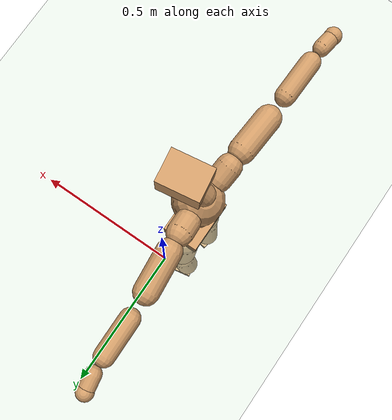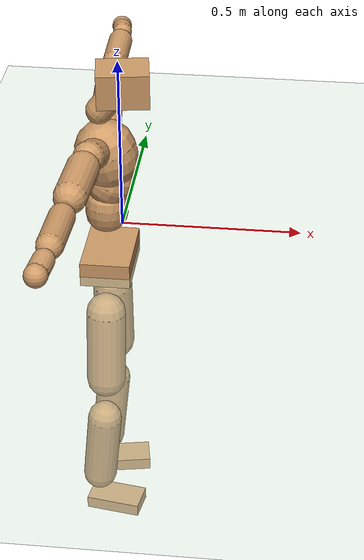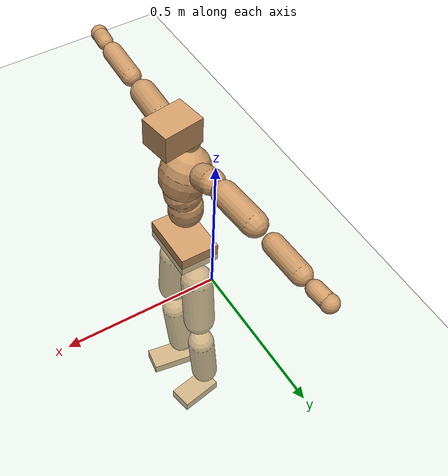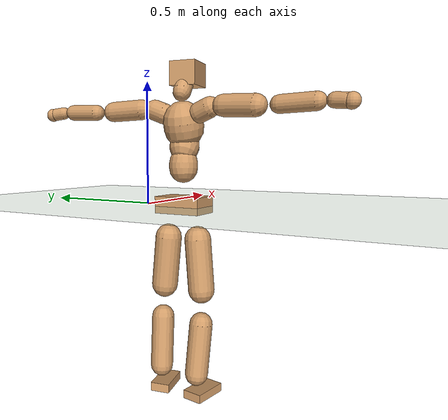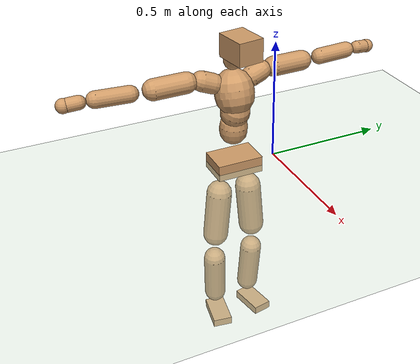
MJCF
<mujoco model="humanoid">
  <compiler coordinate="local" angle="radian"/>
  <default>
    <joint damping="0.0" armature="0.01" stiffness="0.0" limited="true"/>
    <geom conaffinity="1" condim="3" contype="7" margin="0.001" rgba="0.8 0.6 .4 1"/>
  </default>
  <asset>
    <texture type="skybox" builtin="gradient" rgb1=".4 .5 .6" rgb2="0 0 0" width="100" height="100"/>
    <texture builtin="flat" height="1278" mark="cross" markrgb="1 1 1" name="texgeom" random="0.01" rgb1="0.8 0.6 0.4" rgb2="0.8 0.6 0.4" type="cube" width="127"/>
    <texture builtin="checker" height="100" name="texplane" rgb1="0 0 0" rgb2="0.8 0.8 0.8" type="2d" width="100"/>
    <material name="MatPlane" reflectance="0.5" shininess="1" specular="1" texrepeat="60 60" texture="texplane"/>
    <material name="geom" texture="texgeom" texuniform="true"/>
  </asset>
  <worldbody>
    <light cutoff="100" diffuse="1 1 1" dir="-0 0 -1.3" directional="true" exponent="1" pos="0 0 1.3" specular=".1 .1 .1"/>
    <geom conaffinity="1" condim="3" name="floor" pos="0 0 0" rgba="0.8 0.9 0.8 1" size="100 100 .2" type="plane" material="MatPlane"/>
    <body name="Pelvis" pos="-0.0008 -0.1784 0.0155">
      <freejoint name="Pelvis"/>
      <geom type="box" contype="1" conaffinity="1" density="500" pos="-0.0056 -0.0000 -0.0116" size="0.0667 0.0973 0.034" quat="1.0000 0.0000 0.0000 0.0001" name="Pelvis"/>
      <body name="L_Hip" pos="-0.0127 0.062 -0.0805">
        <joint name="L_Hip_x" type="hinge" pos="0 0 0" axis="1 0 0" stiffness="800" damping="80" armature="0.02" range="-180.0000 180.0000"/>
        <joint name="L_Hip_y" type="hinge" pos="0 0 0" axis="0 1 0" stiffness="800" damping="80" armature="0.02" range="-180.0000 180.0000"/>
        <joint name="L_Hip_z" type="hinge" pos="0 0 0" axis="0 0 1" stiffness="800" damping="80" armature="0.02" range="-180.0000 180.0000"/>
        <geom type="capsule" contype="1" conaffinity="1" density="500" fromto="-0.0004 0.0060 -0.0681 -0.0017 0.0239 -0.2723" size="0.0541" name="L_Hip"/>
        <body name="L_Knee" pos="-0.0021 0.0299 -0.3404">
          <joint name="L_Knee_x" type="hinge" pos="0 0 0" axis="1 0 0" stiffness="800" damping="80" armature="0.02" range="-180.0000 180.0000"/>
          <joint name="L_Knee_y" type="hinge" pos="0 0 0" axis="0 1 0" stiffness="800" damping="80" armature="0.02" range="-180.0000 180.0000"/>
          <joint name="L_Knee_z" type="hinge" pos="0 0 0" axis="0 0 1" stiffness="800" damping="80" armature="0.02" range="-180.0000 180.0000"/>
          <geom type="capsule" contype="1" conaffinity="1" density="500" fromto="-0.0074 -0.0021 -0.0700 -0.0296 -0.0084 -0.2798" size="0.0467" name="L_Knee"/>
          <body name="L_Ankle" pos="-0.037 -0.0105 -0.3498">
            <joint name="L_Ankle_x" type="hinge" pos="0 0 0" axis="1 0 0" stiffness="800" damping="80" armature="0.02" range="-180.0000 180.0000"/>
            <joint name="L_Ankle_y" type="hinge" pos="0 0 0" axis="0 1 0" stiffness="800" damping="80" armature="0.02" range="-180.0000 180.0000"/>
            <joint name="L_Ankle_z" type="hinge" pos="0 0 0" axis="0 0 1" stiffness="800" damping="80" armature="0.02" range="-180.0000 180.0000"/>
            <geom type="box" contype="1" conaffinity="1" density="500" pos="0.0522 0.0099 -0.0243" size="0.075 0.0402 0.018" quat="0.9956 0.0000 0.0000 0.0934" name="L_Ankle"/>
            <body name="L_Toe" pos="0.1043 0.0197 -0.0487">
              <joint name="L_Toe_x" type="hinge" pos="0 0 0" axis="1 0 0" stiffness="500" damping="50" armature="0.02" range="-180.0000 180.0000"/>
              <joint name="L_Toe_y" type="hinge" pos="0 0 0" axis="0 1 0" stiffness="500" damping="50" armature="0.02" range="-180.0000 180.0000"/>
              <joint name="L_Toe_z" type="hinge" pos="0 0 0" axis="0 0 1" stiffness="500" damping="50" armature="0.02" range="-180.0000 180.0000"/>
              <geom type="box" contype="1" conaffinity="1" density="500" pos="0.0000 0.0000 0.0241" size="0.0008 0.002 0.0009" quat="0.9949 0.0000 0.0000 0.1007" name="L_Toe"/>
            </body>
          </body>
        </body>
      </body>
      <body name="R_Hip" pos="-0.0095 -0.0609 -0.0795">
        <joint name="R_Hip_x" type="hinge" pos="0 0 0" axis="1 0 0" stiffness="800" damping="80" armature="0.02" range="-180.0000 180.0000"/>
        <joint name="R_Hip_y" type="hinge" pos="0 0 0" axis="0 1 0" stiffness="800" damping="80" armature="0.02" range="-180.0000 180.0000"/>
        <joint name="R_Hip_z" type="hinge" pos="0 0 0" axis="0 0 1" stiffness="800" damping="80" armature="0.02" range="-180.0000 180.0000"/>
        <geom type="capsule" contype="1" conaffinity="1" density="500" fromto="-0.0009 -0.0066 -0.0693 -0.0036 -0.0265 -0.2774" size="0.0535" name="R_Hip"/>
        <body name="R_Knee" pos="-0.0045 -0.0332 -0.3467">
          <joint name="R_Knee_x" type="hinge" pos="0 0 0" axis="1 0 0" stiffness="800" damping="80" armature="0.02" range="-180.0000 180.0000"/>
          <joint name="R_Knee_y" type="hinge" pos="0 0 0" axis="0 1 0" stiffness="800" damping="80" armature="0.02" range="-180.0000 180.0000"/>
          <joint name="R_Knee_z" type="hinge" pos="0 0 0" axis="0 0 1" stiffness="800" damping="80" armature="0.02" range="-180.0000 180.0000"/>
          <geom type="capsule" contype="1" conaffinity="1" density="500" fromto="-0.0070 0.0027 -0.0701 -0.0282 0.0109 -0.2804" size="0.0471" name="R_Knee"/>
          <body name="R_Ankle" pos="-0.0352 0.0136 -0.3504">
            <joint name="R_Ankle_x" type="hinge" pos="0 0 0" axis="1 0 0" stiffness="800" damping="80" armature="0.02" range="-180.0000 180.0000"/>
            <joint name="R_Ankle_y" type="hinge" pos="0 0 0" axis="0 1 0" stiffness="800" damping="80" armature="0.02" range="-180.0000 180.0000"/>
            <joint name="R_Ankle_z" type="hinge" pos="0 0 0" axis="0 0 1" stiffness="800" damping="80" armature="0.02" range="-180.0000 180.0000"/>
            <geom type="box" contype="1" conaffinity="1" density="500" pos="0.0534 -0.0085 -0.0208" size="0.0759 0.0414 0.0177" quat="0.9969 0.0000 0.0000 -0.0787" name="R_Ankle"/>
            <body name="R_Toe" pos="0.1069 -0.017 -0.0415">
              <joint name="R_Toe_x" type="hinge" pos="0 0 0" axis="1 0 0" stiffness="500" damping="50" armature="0.02" range="-180.0000 180.0000"/>
              <joint name="R_Toe_y" type="hinge" pos="0 0 0" axis="0 1 0" stiffness="500" damping="50" armature="0.02" range="-180.0000 180.0000"/>
              <joint name="R_Toe_z" type="hinge" pos="0 0 0" axis="0 0 1" stiffness="500" damping="50" armature="0.02" range="-180.0000 180.0000"/>
              <geom type="box" contype="1" conaffinity="1" density="500" pos="0.0000 0.0000 0.0216" size="0.0008 0.0021 0.0009" quat="0.9977 0.0000 0.0000 -0.0683" name="R_Toe"/>
            </body>
          </body>
        </body>
      </body>
      <body name="Torso" pos="-0.0112 -0.0012 0.0903">
        <joint name="Torso_x" type="hinge" pos="0 0 0" axis="1 0 0" stiffness="1000" damping="100" armature="0.02" range="-180.0000 180.0000"/>
        <joint name="Torso_y" type="hinge" pos="0 0 0" axis="0 1 0" stiffness="1000" damping="100" armature="0.02" range="-180.0000 180.0000"/>
        <joint name="Torso_z" type="hinge" pos="0 0 0" axis="0 0 1" stiffness="1000" damping="100" armature="0.02" range="-180.0000 180.0000"/>
        <geom type="capsule" contype="1" conaffinity="1" density="500" fromto="0.0021 0.0013 0.0667 0.0014 0.0008 0.0444" size="0.0573" name="Torso"/>
        <body name="Spine" pos="0.0034 0.0021 0.1111">
          <joint name="Spine_x" type="hinge" pos="0 0 0" axis="1 0 0" stiffness="1000" damping="100" armature="0.02" range="-180.0000 180.0000"/>
          <joint name="Spine_y" type="hinge" pos="0 0 0" axis="0 1 0" stiffness="1000" damping="100" armature="0.02" range="-180.0000 180.0000"/>
          <joint name="Spine_z" type="hinge" pos="0 0 0" axis="0 0 1" stiffness="1000" damping="100" armature="0.02" range="-180.0000 180.0000"/>
          <geom type="capsule" contype="1" conaffinity="1" density="500" fromto="0.0125 0.0014 0.0255 0.0083 0.0010 0.0170" size="0.0599" name="Spine"/>
          <body name="Chest" pos="0.0208 0.0024 0.0425">
            <joint name="Chest_x" type="hinge" pos="0 0 0" axis="1 0 0" stiffness="1000" damping="100" armature="0.02" range="-180.0000 180.0000"/>
            <joint name="Chest_y" type="hinge" pos="0 0 0" axis="0 1 0" stiffness="1000" damping="100" armature="0.02" range="-180.0000 180.0000"/>
            <joint name="Chest_z" type="hinge" pos="0 0 0" axis="0 0 1" stiffness="1000" damping="100" armature="0.02" range="-180.0000 180.0000"/>
            <geom type="capsule" contype="1" conaffinity="1" density="500" fromto="-0.0221 -0.0010 0.0761 -0.0147 -0.0007 0.0507" size="0.0805" name="Chest"/>
            <body name="Neck" pos="-0.0427 -0.0021 0.1778">
              <joint name="Neck_x" type="hinge" pos="0 0 0" axis="1 0 0" stiffness="500" damping="50" armature="0.02" range="-180.0000 180.0000"/>
              <joint name="Neck_y" type="hinge" pos="0 0 0" axis="0 1 0" stiffness="500" damping="50" armature="0.02" range="-180.0000 180.0000"/>
              <joint name="Neck_z" type="hinge" pos="0 0 0" axis="0 0 1" stiffness="500" damping="50" armature="0.02" range="-180.0000 180.0000"/>
              <geom type="capsule" contype="1" conaffinity="1" density="500" fromto="0.0092 0.0011 0.0111 0.0366 0.0043 0.0446" size="0.0359" name="Neck"/>
              <body name="Head" pos="0.0458 0.0053 0.0557">
                <joint name="Head_x" type="hinge" pos="0 0 0" axis="1 0 0" stiffness="500" damping="50" armature="0.02" range="-180.0000 180.0000"/>
                <joint name="Head_y" type="hinge" pos="0 0 0" axis="0 1 0" stiffness="500" damping="50" armature="0.02" range="-180.0000 180.0000"/>
                <joint name="Head_z" type="hinge" pos="0 0 0" axis="0 0 1" stiffness="500" damping="50" armature="0.02" range="-180.0000 180.0000"/>
                <geom type="box" contype="1" conaffinity="1" density="500" pos="0.0239 0.0037 0.0289" size="0.0679 0.0531 0.0466" quat="0.9971 0.0000 0.0000 0.0759" name="Head"/>
              </body>
            </body>
            <body name="L_Thorax" pos="-0.0318 0.064 0.102">
              <joint name="L_Thorax_x" type="hinge" pos="0 0 0" axis="1 0 0" stiffness="500" damping="50" armature="0.02" range="-180.0000 180.0000"/>
              <joint name="L_Thorax_y" type="hinge" pos="0 0 0" axis="0 1 0" stiffness="500" damping="50" armature="0.02" range="-180.0000 180.0000"/>
              <joint name="L_Thorax_z" type="hinge" pos="0 0 0" axis="0 0 1" stiffness="500" damping="50" armature="0.02" range="-180.0000 180.0000"/>
              <geom type="capsule" contype="1" conaffinity="1" density="500" fromto="-0.0009 0.0146 0.0054 -0.0036 0.0586 0.0218" size="0.0414" name="L_Thorax"/>
              <body name="L_Shoulder" pos="-0.0045 0.0732 0.0272">
                <joint name="L_Shoulder_x" type="hinge" pos="0 0 0" axis="1 0 0" stiffness="500" damping="50" armature="0.02" range="-720.0000 720.0000"/>
                <joint name="L_Shoulder_y" type="hinge" pos="0 0 0" axis="0 1 0" stiffness="500" damping="50" armature="0.02" range="-720.0000 720.0000"/>
                <joint name="L_Shoulder_z" type="hinge" pos="0 0 0" axis="0 0 1" stiffness="500" damping="50" armature="0.02" range="-720.0000 720.0000"/>
                <geom type="capsule" contype="1" conaffinity="1" density="500" fromto="-0.0042 0.0452 -0.0016 -0.0170 0.1806 -0.0063" size="0.0408" name="L_Shoulder"/>
                <body name="L_Elbow" pos="-0.0212 0.2258 -0.0079">
                  <joint name="L_Elbow_x" type="hinge" pos="0 0 0" axis="1 0 0" stiffness="500" damping="50" armature="0.02" range="-720.0000 720.0000"/>
                  <joint name="L_Elbow_y" type="hinge" pos="0 0 0" axis="0 1 0" stiffness="500" damping="50" armature="0.02" range="-720.0000 720.0000"/>
                  <joint name="L_Elbow_z" type="hinge" pos="0 0 0" axis="0 0 1" stiffness="500" damping="50" armature="0.02" range="-720.0000 720.0000"/>
                  <geom type="capsule" contype="1" conaffinity="1" density="500" fromto="-0.0006 0.0426 0.0015 -0.0023 0.1703 0.0061" size="0.0329" name="L_Elbow"/>
                  <body name="L_Wrist" pos="-0.0028 0.2129 0.0077">
                    <joint name="L_Wrist_x" type="hinge" pos="0 0 0" axis="1 0 0" stiffness="300" damping="30" armature="0.02" range="-180.0000 180.0000"/>
                    <joint name="L_Wrist_y" type="hinge" pos="0 0 0" axis="0 1 0" stiffness="300" damping="30" armature="0.02" range="-180.0000 180.0000"/>
                    <joint name="L_Wrist_z" type="hinge" pos="0 0 0" axis="0 0 1" stiffness="300" damping="30" armature="0.02" range="-180.0000 180.0000"/>
                    <geom type="capsule" contype="1" conaffinity="1" density="500" fromto="-0.0024 0.0139 -0.0017 -0.0094 0.0554 -0.0067" size="0.0261" name="L_Wrist"/>
                    <body name="L_Hand" pos="-0.0118 0.0693 -0.0084">
                      <joint name="L_Hand_x" type="hinge" pos="0 0 0" axis="1 0 0" stiffness="300" damping="30" armature="0.02" range="-180.0000 180.0000"/>
                      <joint name="L_Hand_y" type="hinge" pos="0 0 0" axis="0 1 0" stiffness="300" damping="30" armature="0.02" range="-180.0000 180.0000"/>
                      <joint name="L_Hand_z" type="hinge" pos="0 0 0" axis="0 0 1" stiffness="300" damping="30" armature="0.02" range="-180.0000 180.0000"/>
                      <geom type="sphere" contype="1" conaffinity="1" density="500" size="0.0280" pos="0.0000 0.0000 0.0000" name="L_Hand"/>
                    </body>
                  </body>
                </body>
              </body>
            </body>
            <body name="R_Thorax" pos="-0.0358 -0.0667 0.1006">
              <joint name="R_Thorax_x" type="hinge" pos="0 0 0" axis="1 0 0" stiffness="500" damping="50" armature="0.02" range="-180.0000 180.0000"/>
              <joint name="R_Thorax_y" type="hinge" pos="0 0 0" axis="0 1 0" stiffness="500" damping="50" armature="0.02" range="-180.0000 180.0000"/>
              <joint name="R_Thorax_z" type="hinge" pos="0 0 0" axis="0 0 1" stiffness="500" damping="50" armature="0.02" range="-180.0000 180.0000"/>
              <geom type="capsule" contype="1" conaffinity="1" density="500" fromto="-0.0016 -0.0155 0.0059 -0.0065 -0.0619 0.0234" size="0.0409" name="R_Thorax"/>
              <body name="R_Shoulder" pos="-0.0081 -0.0774 0.0293">
                <joint name="R_Shoulder_x" type="hinge" pos="0 0 0" axis="1 0 0" stiffness="500" damping="50" armature="0.02" range="-720.0000 720.0000"/>
                <joint name="R_Shoulder_y" type="hinge" pos="0 0 0" axis="0 1 0" stiffness="500" damping="50" armature="0.02" range="-720.0000 720.0000"/>
                <joint name="R_Shoulder_z" type="hinge" pos="0 0 0" axis="0 0 1" stiffness="500" damping="50" armature="0.02" range="-720.0000 720.0000"/>
                <geom type="capsule" contype="1" conaffinity="1" density="500" fromto="-0.0029 -0.0441 -0.0020 -0.0117 -0.1762 -0.0079" size="0.0424" name="R_Shoulder"/>
                <body name="R_Elbow" pos="-0.0146 -0.2203 -0.0098">
                  <joint name="R_Elbow_x" type="hinge" pos="0 0 0" axis="1 0 0" stiffness="500" damping="50" armature="0.02" range="-720.0000 720.0000"/>
                  <joint name="R_Elbow_y" type="hinge" pos="0 0 0" axis="0 1 0" stiffness="500" damping="50" armature="0.02" range="-720.0000 720.0000"/>
                  <joint name="R_Elbow_z" type="hinge" pos="0 0 0" axis="0 0 1" stiffness="500" damping="50" armature="0.02" range="-720.0000 720.0000"/>
                  <geom type="capsule" contype="1" conaffinity="1" density="500" fromto="-0.0014 -0.0445 0.0012 -0.0055 -0.1781 0.0047" size="0.0332" name="R_Elbow"/>
                  <body name="R_Wrist" pos="-0.0069 -0.2227 0.0059">
                    <joint name="R_Wrist_x" type="hinge" pos="0 0 0" axis="1 0 0" stiffness="300" damping="30" armature="0.02" range="-180.0000 180.0000"/>
                    <joint name="R_Wrist_y" type="hinge" pos="0 0 0" axis="0 1 0" stiffness="300" damping="30" armature="0.02" range="-180.0000 180.0000"/>
                    <joint name="R_Wrist_z" type="hinge" pos="0 0 0" axis="0 0 1" stiffness="300" damping="30" armature="0.02" range="-180.0000 180.0000"/>
                    <geom type="capsule" contype="1" conaffinity="1" density="500" fromto="-0.0018 -0.0142 -0.0013 -0.0074 -0.0568 -0.0052" size="0.0272" name="R_Wrist"/>
                    <body name="R_Hand" pos="-0.0092 -0.071 -0.0065">
                      <joint name="R_Hand_x" type="hinge" pos="0 0 0" axis="1 0 0" stiffness="300" damping="30" armature="0.02" range="-180.0000 180.0000"/>
                      <joint name="R_Hand_y" type="hinge" pos="0 0 0" axis="0 1 0" stiffness="300" damping="30" armature="0.02" range="-180.0000 180.0000"/>
                      <joint name="R_Hand_z" type="hinge" pos="0 0 0" axis="0 0 1" stiffness="300" damping="30" armature="0.02" range="-180.0000 180.0000"/>
                      <geom type="sphere" contype="1" conaffinity="1" density="500" size="0.0287" pos="0.0000 0.0000 0.0000" name="R_Hand"/>
                    </body>
                  </body>
                </body>
              </body>
            </body>
          </body>
        </body>
      </body>
    </body>
  </worldbody>
  <actuator>
    <motor name="L_Hip_x" joint="L_Hip_x" gear="500"/>
    <motor name="L_Hip_y" joint="L_Hip_y" gear="500"/>
    <motor name="L_Hip_z" joint="L_Hip_z" gear="500"/>
    <motor name="L_Knee_x" joint="L_Knee_x" gear="500"/>
    <motor name="L_Knee_y" joint="L_Knee_y" gear="500"/>
    <motor name="L_Knee_z" joint="L_Knee_z" gear="500"/>
    <motor name="L_Ankle_x" joint="L_Ankle_x" gear="500"/>
    <motor name="L_Ankle_y" joint="L_Ankle_y" gear="500"/>
    <motor name="L_Ankle_z" joint="L_Ankle_z" gear="500"/>
    <motor name="L_Toe_x" joint="L_Toe_x" gear="500"/>
    <motor name="L_Toe_y" joint="L_Toe_y" gear="500"/>
    <motor name="L_Toe_z" joint="L_Toe_z" gear="500"/>
    <motor name="R_Hip_x" joint="R_Hip_x" gear="500"/>
    <motor name="R_Hip_y" joint="R_Hip_y" gear="500"/>
    <motor name="R_Hip_z" joint="R_Hip_z" gear="500"/>
    <motor name="R_Knee_x" joint="R_Knee_x" gear="500"/>
    <motor name="R_Knee_y" joint="R_Knee_y" gear="500"/>
    <motor name="R_Knee_z" joint="R_Knee_z" gear="500"/>
    <motor name="R_Ankle_x" joint="R_Ankle_x" gear="500"/>
    <motor name="R_Ankle_y" joint="R_Ankle_y" gear="500"/>
    <motor name="R_Ankle_z" joint="R_Ankle_z" gear="500"/>
    <motor name="R_Toe_x" joint="R_Toe_x" gear="500"/>
    <motor name="R_Toe_y" joint="R_Toe_y" gear="500"/>
    <motor name="R_Toe_z" joint="R_Toe_z" gear="500"/>
    <motor name="Torso_x" joint="Torso_x" gear="500"/>
    <motor name="Torso_y" joint="Torso_y" gear="500"/>
    <motor name="Torso_z" joint="Torso_z" gear="500"/>
    <motor name="Spine_x" joint="Spine_x" gear="500"/>
    <motor name="Spine_y" joint="Spine_y" gear="500"/>
    <motor name="Spine_z" joint="Spine_z" gear="500"/>
    <motor name="Chest_x" joint="Chest_x" gear="500"/>
    <motor name="Chest_y" joint="Chest_y" gear="500"/>
    <motor name="Chest_z" joint="Chest_z" gear="500"/>
    <motor name="Neck_x" joint="Neck_x" gear="500"/>
    <motor name="Neck_y" joint="Neck_y" gear="500"/>
    <motor name="Neck_z" joint="Neck_z" gear="500"/>
    <motor name="Head_x" joint="Head_x" gear="500"/>
    <motor name="Head_y" joint="Head_y" gear="500"/>
    <motor name="Head_z" joint="Head_z" gear="500"/>
    <motor name="L_Thorax_x" joint="L_Thorax_x" gear="500"/>
    <motor name="L_Thorax_y" joint="L_Thorax_y" gear="500"/>
    <motor name="L_Thorax_z" joint="L_Thorax_z" gear="500"/>
    <motor name="L_Shoulder_x" joint="L_Shoulder_x" gear="500"/>
    <motor name="L_Shoulder_y" joint="L_Shoulder_y" gear="500"/>
    <motor name="L_Shoulder_z" joint="L_Shoulder_z" gear="500"/>
    <motor name="L_Elbow_x" joint="L_Elbow_x" gear="500"/>
    <motor name="L_Elbow_y" joint="L_Elbow_y" gear="500"/>
    <motor name="L_Elbow_z" joint="L_Elbow_z" gear="500"/>
    <motor name="L_Wrist_x" joint="L_Wrist_x" gear="500"/>
    <motor name="L_Wrist_y" joint="L_Wrist_y" gear="500"/>
    <motor name="L_Wrist_z" joint="L_Wrist_z" gear="500"/>
    <motor name="L_Hand_x" joint="L_Hand_x" gear="500"/>
    <motor name="L_Hand_y" joint="L_Hand_y" gear="500"/>
    <motor name="L_Hand_z" joint="L_Hand_z" gear="500"/>
    <motor name="R_Thorax_x" joint="R_Thorax_x" gear="500"/>
    <motor name="R_Thorax_y" joint="R_Thorax_y" gear="500"/>
    <motor name="R_Thorax_z" joint="R_Thorax_z" gear="500"/>
    <motor name="R_Shoulder_x" joint="R_Shoulder_x" gear="500"/>
    <motor name="R_Shoulder_y" joint="R_Shoulder_y" gear="500"/>
    <motor name="R_Shoulder_z" joint="R_Shoulder_z" gear="500"/>
    <motor name="R_Elbow_x" joint="R_Elbow_x" gear="500"/>
    <motor name="R_Elbow_y" joint="R_Elbow_y" gear="500"/>
    <motor name="R_Elbow_z" joint="R_Elbow_z" gear="500"/>
    <motor name="R_Wrist_x" joint="R_Wrist_x" gear="500"/>
    <motor name="R_Wrist_y" joint="R_Wrist_y" gear="500"/>
    <motor name="R_Wrist_z" joint="R_Wrist_z" gear="500"/>
    <motor name="R_Hand_x" joint="R_Hand_x" gear="500"/>
    <motor name="R_Hand_y" joint="R_Hand_y" gear="500"/>
    <motor name="R_Hand_z" joint="R_Hand_z" gear="500"/>
  </actuator>
  <contact>
    <exclude body1="Torso" body2="Chest"/>
    <exclude body1="Head" body2="Chest"/>
    <exclude body1="R_Knee" body2="R_Toe"/>
    <exclude body1="R_Knee" body2="L_Ankle"/>
    <exclude body1="R_Knee" body2="L_Toe"/>
    <exclude body1="L_Knee" body2="L_Toe"/>
    <exclude body1="L_Knee" body2="R_Ankle"/>
    <exclude body1="L_Knee" body2="R_Toe"/>
    <exclude body1="L_Shoulder" body2="Chest"/>
    <exclude body1="R_Shoulder" body2="Chest"/>
  </contact>
  <sensor/>
  <size njmax="700" nconmax="700"/>
</mujoco>
